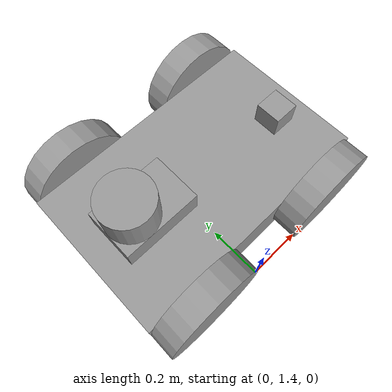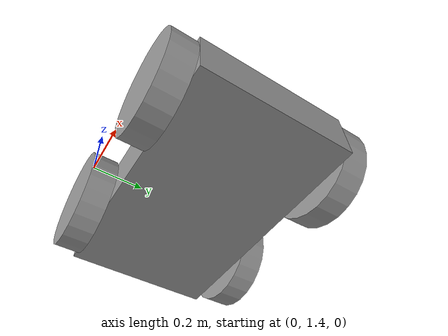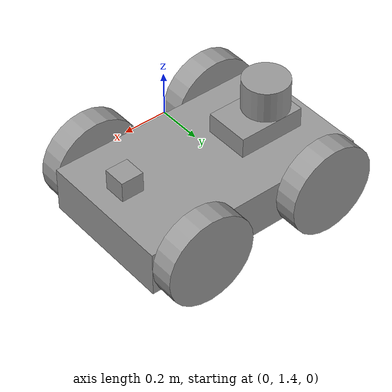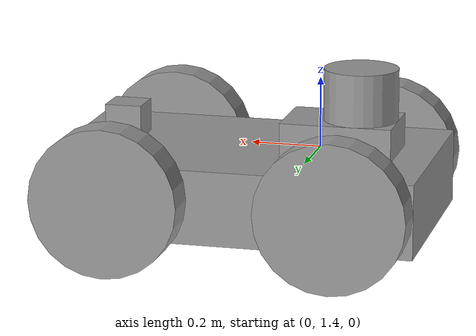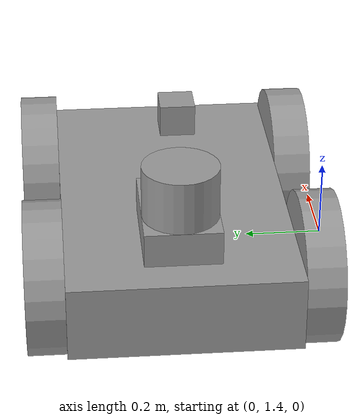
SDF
<?xml version='1.0'?>
<sdf version='1.7'>
  <model name='model_1'>
    <link name='link_0'>
      <inertial>
        <mass>1</mass>
        <inertia>
          <ixx>0.166667</ixx>
          <ixy>0</ixy>
          <ixz>0</ixz>
          <iyy>0.166667</iyy>
          <iyz>0</iyz>
          <izz>0.166667</izz>
        </inertia>
        <pose>0 0 0 0 -0 0</pose>
      </inertial>
      <pose>0.10191 1.79487 -0.005 0 -0 0</pose>
      <gravity>1</gravity>
      <self_collide>0</self_collide>
      <kinematic>0</kinematic>
      <enable_wind>0</enable_wind>
      <visual name='visual'>
        <pose>0 0 0 0 -0 0</pose>
        <geometry>
          <box>
            <size>1 0.6 0.2</size>
          </box>
        </geometry>
        <material>
          <lighting>1</lighting>
          <script>
            <uri>file://media/materials/scripts/gazebo.material</uri>
            <name>Gazebo/Grey</name>
          </script>
          <shader type='pixel'>
            <normal_map>__default__</normal_map>
          </shader>
          <ambient>0.3 0.3 0.3 1</ambient>
          <diffuse>0.7 0.7 0.7 1</diffuse>
          <specular>0.01 0.01 0.01 1</specular>
          <emissive>0 0 0 1</emissive>
        </material>
        <transparency>0</transparency>
        <cast_shadows>1</cast_shadows>
      </visual>
      <collision name='collision'>
        <laser_retro>0</laser_retro>
        <max_contacts>10</max_contacts>
        <pose>0 0 0 0 -0 0</pose>
        <geometry>
          <box>
            <size>1 0.6 0.2</size>
          </box>
        </geometry>
        <surface>
          <friction>
            <ode>
              <mu>1</mu>
              <mu2>1</mu2>
              <fdir1>0 0 0</fdir1>
              <slip1>0</slip1>
              <slip2>0</slip2>
            </ode>
            <torsional>
              <coefficient>1</coefficient>
              <patch_radius>0</patch_radius>
              <surface_radius>0</surface_radius>
              <use_patch_radius>1</use_patch_radius>
              <ode>
                <slip>0</slip>
              </ode>
            </torsional>
          </friction>
          <bounce>
            <restitution_coefficient>0</restitution_coefficient>
            <threshold>1e+06</threshold>
          </bounce>
          <contact>
            <collide_without_contact>0</collide_without_contact>
            <collide_without_contact_bitmask>1</collide_without_contact_bitmask>
            <collide_bitmask>1</collide_bitmask>
            <ode>
              <soft_cfm>0</soft_cfm>
              <soft_erp>0.2</soft_erp>
              <kp>1e+13</kp>
              <kd>1</kd>
              <max_vel>0.01</max_vel>
              <min_depth>0</min_depth>
            </ode>
            <bullet>
              <split_impulse>1</split_impulse>
              <split_impulse_penetration_threshold>-0.01</split_impulse_penetration_threshold>
              <soft_cfm>0</soft_cfm>
              <soft_erp>0.2</soft_erp>
              <kp>1e+13</kp>
              <kd>1</kd>
            </bullet>
          </contact>
        </surface>
      </collision>
    </link>
    <link name='link_1'>
      <inertial>
        <mass>1</mass>
        <inertia>
          <ixx>0.166667</ixx>
          <ixy>0</ixy>
          <ixz>0</ixz>
          <iyy>0.166667</iyy>
          <iyz>0</iyz>
          <izz>0.166667</izz>
        </inertia>
        <pose>0 0 0 0 -0 0</pose>
      </inertial>
      <pose>-0.14809 1.79487 0.135 0 -0 0</pose>
      <gravity>1</gravity>
      <self_collide>0</self_collide>
      <kinematic>0</kinematic>
      <enable_wind>0</enable_wind>
      <visual name='visual'>
        <pose>0 0 0 0 -0 0</pose>
        <geometry>
          <box>
            <size>0.3 0.2 0.1</size>
          </box>
        </geometry>
        <material>
          <lighting>1</lighting>
          <script>
            <uri>file://media/materials/scripts/gazebo.material</uri>
            <name>Gazebo/Grey</name>
          </script>
          <shader type='pixel'>
            <normal_map>__default__</normal_map>
          </shader>
          <emissive>0 0 0 1</emissive>
          <ambient>0.3 0.3 0.3 1</ambient>
          <diffuse>0.7 0.7 0.7 1</diffuse>
          <specular>0.01 0.01 0.01 1</specular>
        </material>
        <transparency>0</transparency>
        <cast_shadows>1</cast_shadows>
      </visual>
      <collision name='collision'>
        <laser_retro>0</laser_retro>
        <max_contacts>10</max_contacts>
        <pose>0 0 0 0 -0 0</pose>
        <geometry>
          <box>
            <size>0.3 0.2 0.1</size>
          </box>
        </geometry>
        <surface>
          <friction>
            <ode>
              <mu>1</mu>
              <mu2>1</mu2>
              <fdir1>0 0 0</fdir1>
              <slip1>0</slip1>
              <slip2>0</slip2>
            </ode>
            <torsional>
              <coefficient>1</coefficient>
              <patch_radius>0</patch_radius>
              <surface_radius>0</surface_radius>
              <use_patch_radius>1</use_patch_radius>
              <ode>
                <slip>0</slip>
              </ode>
            </torsional>
          </friction>
          <bounce>
            <restitution_coefficient>0</restitution_coefficient>
            <threshold>1e+06</threshold>
          </bounce>
          <contact>
            <collide_without_contact>0</collide_without_contact>
            <collide_without_contact_bitmask>1</collide_without_contact_bitmask>
            <collide_bitmask>1</collide_bitmask>
            <ode>
              <soft_cfm>0</soft_cfm>
              <soft_erp>0.2</soft_erp>
              <kp>1e+13</kp>
              <kd>1</kd>
              <max_vel>0.01</max_vel>
              <min_depth>0</min_depth>
            </ode>
            <bullet>
              <split_impulse>1</split_impulse>
              <split_impulse_penetration_threshold>-0.01</split_impulse_penetration_threshold>
              <soft_cfm>0</soft_cfm>
              <soft_erp>0.2</soft_erp>
              <kp>1e+13</kp>
              <kd>1</kd>
            </bullet>
          </contact>
        </surface>
      </collision>
    </link>
    <link name='link_2'>
      <inertial>
        <mass>1</mass>
        <inertia>
          <ixx>0.166667</ixx>
          <ixy>0</ixy>
          <ixz>0</ixz>
          <iyy>0.166667</iyy>
          <iyz>0</iyz>
          <izz>0.166667</izz>
        </inertia>
        <pose>0 0 0 0 -0 0</pose>
      </inertial>
      <pose>0.46191 1.74987 0.135 0 -0 0</pose>
      <gravity>1</gravity>
      <self_collide>0</self_collide>
      <kinematic>0</kinematic>
      <enable_wind>0</enable_wind>
      <visual name='visual'>
        <pose>0 0 0 0 -0 0</pose>
        <geometry>
          <box>
            <size>0.1 0.1 0.1</size>
          </box>
        </geometry>
        <material>
          <lighting>1</lighting>
          <script>
            <uri>file://media/materials/scripts/gazebo.material</uri>
            <name>Gazebo/Grey</name>
          </script>
          <shader type='pixel'>
            <normal_map>__default__</normal_map>
          </shader>
          <ambient>0.3 0.3 0.3 1</ambient>
          <diffuse>0.7 0.7 0.7 1</diffuse>
          <specular>0.01 0.01 0.01 1</specular>
          <emissive>0 0 0 1</emissive>
        </material>
        <transparency>0</transparency>
        <cast_shadows>1</cast_shadows>
      </visual>
      <collision name='collision'>
        <laser_retro>0</laser_retro>
        <max_contacts>10</max_contacts>
        <pose>0 0 0 0 -0 0</pose>
        <geometry>
          <box>
            <size>0.1 0.1 0.1</size>
          </box>
        </geometry>
        <surface>
          <friction>
            <ode>
              <mu>1</mu>
              <mu2>1</mu2>
              <fdir1>0 0 0</fdir1>
              <slip1>0</slip1>
              <slip2>0</slip2>
            </ode>
            <torsional>
              <coefficient>1</coefficient>
              <patch_radius>0</patch_radius>
              <surface_radius>0</surface_radius>
              <use_patch_radius>1</use_patch_radius>
              <ode>
                <slip>0</slip>
              </ode>
            </torsional>
          </friction>
          <bounce>
            <restitution_coefficient>0</restitution_coefficient>
            <threshold>1e+06</threshold>
          </bounce>
          <contact>
            <collide_without_contact>0</collide_without_contact>
            <collide_without_contact_bitmask>1</collide_without_contact_bitmask>
            <collide_bitmask>1</collide_bitmask>
            <ode>
              <soft_cfm>0</soft_cfm>
              <soft_erp>0.2</soft_erp>
              <kp>1e+13</kp>
              <kd>1</kd>
              <max_vel>0.01</max_vel>
              <min_depth>0</min_depth>
            </ode>
            <bullet>
              <split_impulse>1</split_impulse>
              <split_impulse_penetration_threshold>-0.01</split_impulse_penetration_threshold>
              <soft_cfm>0</soft_cfm>
              <soft_erp>0.2</soft_erp>
              <kp>1e+13</kp>
              <kd>1</kd>
            </bullet>
          </contact>
        </surface>
      </collision>
    </link>
    <link name='link_3'>
      <inertial>
        <mass>1</mass>
        <inertia>
          <ixx>0.145833</ixx>
          <ixy>0</ixy>
          <ixz>0</ixz>
          <iyy>0.145833</iyy>
          <iyz>0</iyz>
          <izz>0.125</izz>
        </inertia>
        <pose>0 0 0 0 -0 0</pose>
      </inertial>
      <pose>-0.19809 1.79487 0.25 0 -0 0</pose>
      <gravity>1</gravity>
      <self_collide>0</self_collide>
      <kinematic>0</kinematic>
      <enable_wind>0</enable_wind>
      <visual name='visual'>
        <pose>0 0 0 0 -0 0</pose>
        <geometry>
          <cylinder>
            <radius>0.1</radius>
            <length>0.15</length>
          </cylinder>
        </geometry>
        <material>
          <lighting>1</lighting>
          <script>
            <uri>file://media/materials/scripts/gazebo.material</uri>
            <name>Gazebo/Grey</name>
          </script>
          <shader type='pixel'>
            <normal_map>__default__</normal_map>
          </shader>
          <emissive>0 0 0 1</emissive>
          <ambient>0.3 0.3 0.3 1</ambient>
          <diffuse>0.7 0.7 0.7 1</diffuse>
          <specular>0.01 0.01 0.01 1</specular>
        </material>
        <transparency>0</transparency>
        <cast_shadows>1</cast_shadows>
      </visual>
      <collision name='collision'>
        <laser_retro>0</laser_retro>
        <max_contacts>10</max_contacts>
        <pose>0 0 0 0 -0 0</pose>
        <geometry>
          <cylinder>
            <radius>0.1</radius>
            <length>0.15</length>
          </cylinder>
        </geometry>
        <surface>
          <friction>
            <ode>
              <mu>1</mu>
              <mu2>1</mu2>
              <fdir1>0 0 0</fdir1>
              <slip1>0</slip1>
              <slip2>0</slip2>
            </ode>
            <torsional>
              <coefficient>1</coefficient>
              <patch_radius>0</patch_radius>
              <surface_radius>0</surface_radius>
              <use_patch_radius>1</use_patch_radius>
              <ode>
                <slip>0</slip>
              </ode>
            </torsional>
          </friction>
          <bounce>
            <restitution_coefficient>0</restitution_coefficient>
            <threshold>1e+06</threshold>
          </bounce>
          <contact>
            <collide_without_contact>0</collide_without_contact>
            <collide_without_contact_bitmask>1</collide_without_contact_bitmask>
            <collide_bitmask>1</collide_bitmask>
            <ode>
              <soft_cfm>0</soft_cfm>
              <soft_erp>0.2</soft_erp>
              <kp>1e+13</kp>
              <kd>1</kd>
              <max_vel>0.01</max_vel>
              <min_depth>0</min_depth>
            </ode>
            <bullet>
              <split_impulse>1</split_impulse>
              <split_impulse_penetration_threshold>-0.01</split_impulse_penetration_threshold>
              <soft_cfm>0</soft_cfm>
              <soft_erp>0.2</soft_erp>
              <kp>1e+13</kp>
              <kd>1</kd>
            </bullet>
          </contact>
        </surface>
      </collision>
    </link>
    <link name='link_4'>
      <inertial>
        <mass>1</mass>
        <inertia>
          <ixx>0.145833</ixx>
          <ixy>0</ixy>
          <ixz>0</ixz>
          <iyy>0.145833</iyy>
          <iyz>0</iyz>
          <izz>0.125</izz>
        </inertia>
        <pose>0 0 0 0 -0 0</pose>
      </inertial>
      <pose>-0.19809 2.14493 0.015 0 -0 0</pose>
      <gravity>1</gravity>
      <self_collide>0</self_collide>
      <kinematic>0</kinematic>
      <enable_wind>0</enable_wind>
      <visual name='visual'>
        <pose>0 0 0 1.5705 -0 0</pose>
        <geometry>
          <cylinder>
            <radius>0.2</radius>
            <length>0.1</length>
          </cylinder>
        </geometry>
        <material>
          <lighting>1</lighting>
          <script>
            <uri>file://media/materials/scripts/gazebo.material</uri>
            <name>Gazebo/Grey</name>
          </script>
          <shader type='pixel'>
            <normal_map>__default__</normal_map>
          </shader>
          <ambient>0.3 0.3 0.3 1</ambient>
          <diffuse>0.7 0.7 0.7 1</diffuse>
          <specular>0.01 0.01 0.01 1</specular>
          <emissive>0 0 0 1</emissive>
        </material>
        <transparency>0</transparency>
        <cast_shadows>1</cast_shadows>
      </visual>
      <collision name='collision'>
        <laser_retro>0</laser_retro>
        <max_contacts>10</max_contacts>
        <pose>0 0 0 1.5705 -0 0</pose>
        <geometry>
          <cylinder>
            <radius>0.2</radius>
            <length>0.1</length>
          </cylinder>
        </geometry>
        <surface>
          <friction>
            <ode>
              <mu>1</mu>
              <mu2>1</mu2>
              <fdir1>0 0 0</fdir1>
              <slip1>0</slip1>
              <slip2>0</slip2>
            </ode>
            <torsional>
              <coefficient>1</coefficient>
              <patch_radius>0</patch_radius>
              <surface_radius>0</surface_radius>
              <use_patch_radius>1</use_patch_radius>
              <ode>
                <slip>0</slip>
              </ode>
            </torsional>
          </friction>
          <bounce>
            <restitution_coefficient>0</restitution_coefficient>
            <threshold>1e+06</threshold>
          </bounce>
          <contact>
            <collide_without_contact>0</collide_without_contact>
            <collide_without_contact_bitmask>1</collide_without_contact_bitmask>
            <collide_bitmask>1</collide_bitmask>
            <ode>
              <soft_cfm>0</soft_cfm>
              <soft_erp>0.2</soft_erp>
              <kp>1e+13</kp>
              <kd>1</kd>
              <max_vel>0.01</max_vel>
              <min_depth>0</min_depth>
            </ode>
            <bullet>
              <split_impulse>1</split_impulse>
              <split_impulse_penetration_threshold>-0.01</split_impulse_penetration_threshold>
              <soft_cfm>0</soft_cfm>
              <soft_erp>0.2</soft_erp>
              <kp>1e+13</kp>
              <kd>1</kd>
            </bullet>
          </contact>
        </surface>
      </collision>
    </link>
    <link name='link_4_clone'>
      <inertial>
        <mass>1</mass>
        <inertia>
          <ixx>0.145833</ixx>
          <ixy>0</ixy>
          <ixz>0</ixz>
          <iyy>0.145833</iyy>
          <iyz>0</iyz>
          <izz>0.125</izz>
        </inertia>
        <pose>0 0 0 0 -0 0</pose>
      </inertial>
      <pose>0.40191 2.14493 0.015 0 -0 0</pose>
      <gravity>1</gravity>
      <self_collide>0</self_collide>
      <kinematic>0</kinematic>
      <enable_wind>0</enable_wind>
      <visual name='visual'>
        <pose>0 0 0 1.5705 -0 0</pose>
        <geometry>
          <cylinder>
            <radius>0.2</radius>
            <length>0.1</length>
          </cylinder>
        </geometry>
        <material>
          <lighting>1</lighting>
          <script>
            <uri>file://media/materials/scripts/gazebo.material</uri>
            <name>Gazebo/Grey</name>
          </script>
          <shader type='pixel'>
            <normal_map>__default__</normal_map>
          </shader>
          <ambient>0.3 0.3 0.3 1</ambient>
          <diffuse>0.7 0.7 0.7 1</diffuse>
          <specular>0.01 0.01 0.01 1</specular>
          <emissive>0 0 0 1</emissive>
        </material>
        <transparency>0</transparency>
        <cast_shadows>1</cast_shadows>
      </visual>
      <collision name='collision'>
        <laser_retro>0</laser_retro>
        <max_contacts>10</max_contacts>
        <pose>0 0 0 1.5705 -0 0</pose>
        <geometry>
          <cylinder>
            <radius>0.2</radius>
            <length>0.1</length>
          </cylinder>
        </geometry>
        <surface>
          <friction>
            <ode>
              <mu>1</mu>
              <mu2>1</mu2>
              <fdir1>0 0 0</fdir1>
              <slip1>0</slip1>
              <slip2>0</slip2>
            </ode>
            <torsional>
              <coefficient>1</coefficient>
              <patch_radius>0</patch_radius>
              <surface_radius>0</surface_radius>
              <use_patch_radius>1</use_patch_radius>
              <ode>
                <slip>0</slip>
              </ode>
            </torsional>
          </friction>
          <bounce>
            <restitution_coefficient>0</restitution_coefficient>
            <threshold>1e+06</threshold>
          </bounce>
          <contact>
            <collide_without_contact>0</collide_without_contact>
            <collide_without_contact_bitmask>1</collide_without_contact_bitmask>
            <collide_bitmask>1</collide_bitmask>
            <ode>
              <soft_cfm>0</soft_cfm>
              <soft_erp>0.2</soft_erp>
              <kp>1e+13</kp>
              <kd>1</kd>
              <max_vel>0.01</max_vel>
              <min_depth>0</min_depth>
            </ode>
            <bullet>
              <split_impulse>1</split_impulse>
              <split_impulse_penetration_threshold>-0.01</split_impulse_penetration_threshold>
              <soft_cfm>0</soft_cfm>
              <soft_erp>0.2</soft_erp>
              <kp>1e+13</kp>
              <kd>1</kd>
            </bullet>
          </contact>
        </surface>
      </collision>
    </link>
    <link name='link_4_clone_0'>
      <inertial>
        <mass>1</mass>
        <inertia>
          <ixx>0.145833</ixx>
          <ixy>0</ixy>
          <ixz>0</ixz>
          <iyy>0.145833</iyy>
          <iyz>0</iyz>
          <izz>0.125</izz>
        </inertia>
        <pose>0 0 0 0 -0 0</pose>
      </inertial>
      <pose>0.40191 1.44481 0.015 0 -0 0</pose>
      <gravity>1</gravity>
      <self_collide>0</self_collide>
      <kinematic>0</kinematic>
      <enable_wind>0</enable_wind>
      <visual name='visual'>
        <pose>0 0 0 1.5705 -0 0</pose>
        <geometry>
          <cylinder>
            <radius>0.2</radius>
            <length>0.1</length>
          </cylinder>
        </geometry>
        <material>
          <lighting>1</lighting>
          <script>
            <uri>file://media/materials/scripts/gazebo.material</uri>
            <name>Gazebo/Grey</name>
          </script>
          <shader type='pixel'>
            <normal_map>__default__</normal_map>
          </shader>
          <ambient>0.3 0.3 0.3 1</ambient>
          <diffuse>0.7 0.7 0.7 1</diffuse>
          <specular>0.01 0.01 0.01 1</specular>
          <emissive>0 0 0 1</emissive>
        </material>
        <transparency>0</transparency>
        <cast_shadows>1</cast_shadows>
      </visual>
      <collision name='collision'>
        <laser_retro>0</laser_retro>
        <max_contacts>10</max_contacts>
        <pose>0 0 0 1.5705 -0 0</pose>
        <geometry>
          <cylinder>
            <radius>0.2</radius>
            <length>0.1</length>
          </cylinder>
        </geometry>
        <surface>
          <friction>
            <ode>
              <mu>1</mu>
              <mu2>1</mu2>
              <fdir1>0 0 0</fdir1>
              <slip1>0</slip1>
              <slip2>0</slip2>
            </ode>
            <torsional>
              <coefficient>1</coefficient>
              <patch_radius>0</patch_radius>
              <surface_radius>0</surface_radius>
              <use_patch_radius>1</use_patch_radius>
              <ode>
                <slip>0</slip>
              </ode>
            </torsional>
          </friction>
          <bounce>
            <restitution_coefficient>0</restitution_coefficient>
            <threshold>1e+06</threshold>
          </bounce>
          <contact>
            <collide_without_contact>0</collide_without_contact>
            <collide_without_contact_bitmask>1</collide_without_contact_bitmask>
            <collide_bitmask>1</collide_bitmask>
            <ode>
              <soft_cfm>0</soft_cfm>
              <soft_erp>0.2</soft_erp>
              <kp>1e+13</kp>
              <kd>1</kd>
              <max_vel>0.01</max_vel>
              <min_depth>0</min_depth>
            </ode>
            <bullet>
              <split_impulse>1</split_impulse>
              <split_impulse_penetration_threshold>-0.01</split_impulse_penetration_threshold>
              <soft_cfm>0</soft_cfm>
              <soft_erp>0.2</soft_erp>
              <kp>1e+13</kp>
              <kd>1</kd>
            </bullet>
          </contact>
        </surface>
      </collision>
    </link>
    <link name='link_4_clone_1'>
      <inertial>
        <mass>1</mass>
        <inertia>
          <ixx>0.145833</ixx>
          <ixy>0</ixy>
          <ixz>0</ixz>
          <iyy>0.145833</iyy>
          <iyz>0</iyz>
          <izz>0.125</izz>
        </inertia>
        <pose>0 0 0 0 -0 0</pose>
      </inertial>
      <pose>-0.19809 1.44481 0.015 0 -0 0</pose>
      <gravity>1</gravity>
      <self_collide>0</self_collide>
      <kinematic>0</kinematic>
      <enable_wind>0</enable_wind>
      <visual name='visual'>
        <pose>0 0 0 1.5705 -0 0</pose>
        <geometry>
          <cylinder>
            <radius>0.2</radius>
            <length>0.1</length>
          </cylinder>
        </geometry>
        <material>
          <lighting>1</lighting>
          <script>
            <uri>file://media/materials/scripts/gazebo.material</uri>
            <name>Gazebo/Grey</name>
          </script>
          <shader type='pixel'>
            <normal_map>__default__</normal_map>
          </shader>
          <ambient>0.3 0.3 0.3 1</ambient>
          <diffuse>0.7 0.7 0.7 1</diffuse>
          <specular>0.01 0.01 0.01 1</specular>
          <emissive>0 0 0 1</emissive>
        </material>
        <transparency>0</transparency>
        <cast_shadows>1</cast_shadows>
      </visual>
      <collision name='collision'>
        <laser_retro>0</laser_retro>
        <max_contacts>10</max_contacts>
        <pose>0 0 0 1.5705 -0 0</pose>
        <geometry>
          <cylinder>
            <radius>0.2</radius>
            <length>0.1</length>
          </cylinder>
        </geometry>
        <surface>
          <friction>
            <ode>
              <mu>1</mu>
              <mu2>1</mu2>
              <fdir1>0 0 0</fdir1>
              <slip1>0</slip1>
              <slip2>0</slip2>
            </ode>
            <torsional>
              <coefficient>1</coefficient>
              <patch_radius>0</patch_radius>
              <surface_radius>0</surface_radius>
              <use_patch_radius>1</use_patch_radius>
              <ode>
                <slip>0</slip>
              </ode>
            </torsional>
          </friction>
          <bounce>
            <restitution_coefficient>0</restitution_coefficient>
            <threshold>1e+06</threshold>
          </bounce>
          <contact>
            <collide_without_contact>0</collide_without_contact>
            <collide_without_contact_bitmask>1</collide_without_contact_bitmask>
            <collide_bitmask>1</collide_bitmask>
            <ode>
              <soft_cfm>0</soft_cfm>
              <soft_erp>0.2</soft_erp>
              <kp>1e+13</kp>
              <kd>1</kd>
              <max_vel>0.01</max_vel>
              <min_depth>0</min_depth>
            </ode>
            <bullet>
              <split_impulse>1</split_impulse>
              <split_impulse_penetration_threshold>-0.01</split_impulse_penetration_threshold>
              <soft_cfm>0</soft_cfm>
              <soft_erp>0.2</soft_erp>
              <kp>1e+13</kp>
              <kd>1</kd>
            </bullet>
          </contact>
        </surface>
      </collision>
    </link>
    <joint name='link_0_JOINT_0' type='fixed'>
      <parent>link_0</parent>
      <child>link_2</child>
      <pose>0 0 0 0 -0 0</pose>
      <physics>
        <ode>
          <limit>
            <cfm>0</cfm>
            <erp>0.2</erp>
          </limit>
          <suspension>
            <cfm>0</cfm>
            <erp>0.2</erp>
          </suspension>
        </ode>
      </physics>
    </joint>
    <joint name='link_0_JOINT_1' type='fixed'>
      <parent>link_0</parent>
      <child>link_1</child>
      <pose>0 0 0 0 -0 0</pose>
      <physics>
        <ode>
          <limit>
            <cfm>0</cfm>
            <erp>0.2</erp>
          </limit>
          <suspension>
            <cfm>0</cfm>
            <erp>0.2</erp>
          </suspension>
        </ode>
      </physics>
    </joint>
    <joint name='link_0_JOINT_3' type='revolute'>
      <parent>link_0</parent>
      <child>link_4_clone</child>
      <pose>0 0 0 0 -0 0</pose>
      <axis>
        <xyz>0 1 0</xyz>
        <limit>
          <lower>-1.79769e+308</lower>
          <upper>1.79769e+308</upper>
          <effort>-1</effort>
          <velocity>-1</velocity>
        </limit>
        <dynamics>
          <spring_reference>0</spring_reference>
          <spring_stiffness>0</spring_stiffness>
          <damping>0</damping>
          <friction>0</friction>
        </dynamics>
      </axis>
      <physics>
        <ode>
          <limit>
            <cfm>0</cfm>
            <erp>0.2</erp>
          </limit>
          <suspension>
            <cfm>0</cfm>
            <erp>0.2</erp>
          </suspension>
        </ode>
      </physics>
    </joint>
    <joint name='link_0_JOINT_4' type='revolute'>
      <parent>link_0</parent>
      <child>link_4</child>
      <pose>0 0 0 0 -0 0</pose>
      <axis>
        <xyz>0 1 0</xyz>
        <limit>
          <lower>-1.79769e+308</lower>
          <upper>1.79769e+308</upper>
          <effort>-1</effort>
          <velocity>-1</velocity>
        </limit>
        <dynamics>
          <spring_reference>0</spring_reference>
          <spring_stiffness>0</spring_stiffness>
          <damping>0</damping>
          <friction>0</friction>
        </dynamics>
      </axis>
      <physics>
        <ode>
          <limit>
            <cfm>0</cfm>
            <erp>0.2</erp>
          </limit>
          <suspension>
            <cfm>0</cfm>
            <erp>0.2</erp>
          </suspension>
        </ode>
      </physics>
    </joint>
    <joint name='link_0_JOINT_5' type='revolute'>
      <parent>link_0</parent>
      <child>link_4_clone_1</child>
      <pose>0 0 0 0 -0 0</pose>
      <axis>
        <xyz>0 1 0</xyz>
        <limit>
          <lower>-1.79769e+308</lower>
          <upper>1.79769e+308</upper>
          <effort>-1</effort>
          <velocity>-1</velocity>
        </limit>
        <dynamics>
          <spring_reference>0</spring_reference>
          <spring_stiffness>0</spring_stiffness>
          <damping>0</damping>
          <friction>0</friction>
        </dynamics>
      </axis>
      <physics>
        <ode>
          <limit>
            <cfm>0</cfm>
            <erp>0.2</erp>
          </limit>
          <suspension>
            <cfm>0</cfm>
            <erp>0.2</erp>
          </suspension>
        </ode>
      </physics>
    </joint>
    <joint name='link_0_JOINT_6' type='revolute'>
      <parent>link_0</parent>
      <child>link_4_clone_0</child>
      <pose>0 0 0 0 -0 0</pose>
      <axis>
        <xyz>0 1 0</xyz>
        <limit>
          <lower>-1.79769e+308</lower>
          <upper>1.79769e+308</upper>
          <effort>-1</effort>
          <velocity>-1</velocity>
        </limit>
        <dynamics>
          <spring_reference>0</spring_reference>
          <spring_stiffness>0</spring_stiffness>
          <damping>0</damping>
          <friction>0</friction>
        </dynamics>
      </axis>
      <physics>
        <ode>
          <limit>
            <cfm>0</cfm>
            <erp>0.2</erp>
          </limit>
          <suspension>
            <cfm>0</cfm>
            <erp>0.2</erp>
          </suspension>
        </ode>
      </physics>
    </joint>
    <joint name='link_1_JOINT_2' type='fixed'>
      <parent>link_1</parent>
      <child>link_3</child>
      <pose>0 0 0 0 -0 0</pose>
      <physics>
        <ode>
          <limit>
            <cfm>0</cfm>
            <erp>0.2</erp>
          </limit>
          <suspension>
            <cfm>0</cfm>
            <erp>0.2</erp>
          </suspension>
        </ode>
      </physics>
    </joint>
    <static>0</static>
    <allow_auto_disable>1</allow_auto_disable>
  </model>
</sdf>
